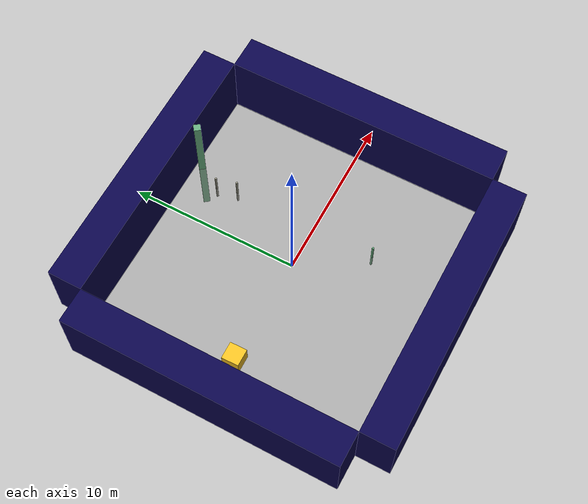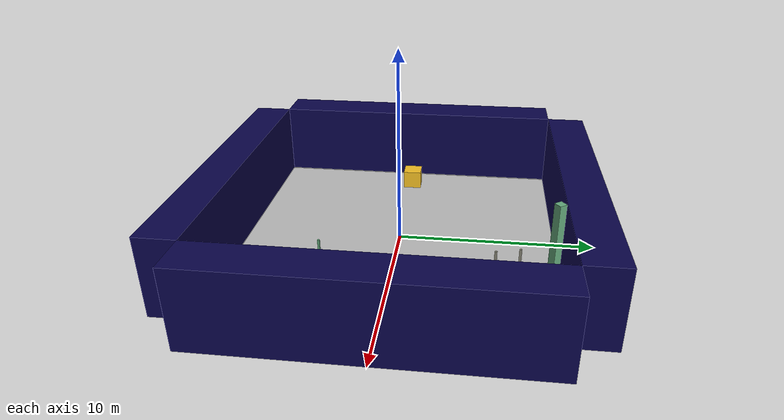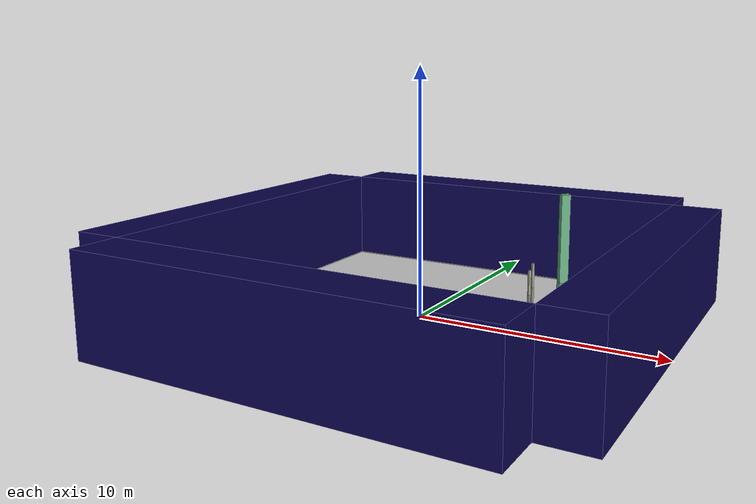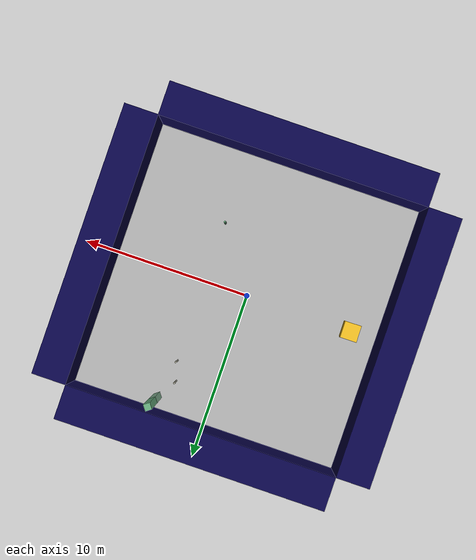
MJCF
<mujoco model="unnamed_model">
  <default>
    <default class="/" />
    <default class="border/" />
    <default class="border_1/" />
    <default class="border_2/" />
    <default class="border_3/" />
    <default class="light/" />
    <default class="agent/" />
    <default class="apple0/" />
    <default class="apple1/" />
    <default class="stone/" />
    <default class="stone_1/" />
  </default>
  <worldbody>
    <body name="border/">
      <body name="border/border" pos="0 9 2">
        <geom name="border/border_geom" class="border/" type="box" size="8.0 1.0 2.0" rgba="0.035 0.016 0.29 1.0" />
      </body>
    </body>
    <body name="border_1/">
      <body name="border_1/border" pos="0 -9 2">
        <geom name="border_1/border_geom" class="border_1/" type="box" size="8.0 1.0 2.0" rgba="0.035 0.016 0.29 1.0" />
      </body>
    </body>
    <body name="border_2/">
      <body name="border_2/border" pos="9 0 2">
        <geom name="border_2/border_geom" class="border_2/" type="box" size="1.0 8.0 2.0" rgba="0.035 0.016 0.29 1.0" />
      </body>
    </body>
    <body name="border_3/">
      <body name="border_3/border" pos="-9 0 2">
        <geom name="border_3/border_geom" class="border_3/" type="box" size="1.0 8.0 2.0" rgba="0.035 0.016 0.29 1.0" />
      </body>
    </body>
    <body name="light/">
      <body name="light/light" pos="0 0 15">
        <geom name="light/light_geom" class="light/" size="0.5" rgba="1.0 1.0 1.0 0.0" />
        <light name="light//unnamed_light_0" class="light/" />
      </body>
    </body>
    <body euler="0 0 270.88273873658773" name="agent/" pos="-6.4000000000000004 0 0.5">
      <joint name="agent/boxagent_freeJoint/" class="/" type="free" />
      <body name="agent/agent" pos="0 0 0" euler="0 0 0">
        <geom name="agent/boxagent_geom" class="agent/" type="box" size="0.5 0.5 0.5" rgba="0.949 0.7451 0.1333 1.0" euler="0 0 0" />
        <camera name="agent/boxagent_camera" class="agent/" fovy="90" pos="0 0 0.25" euler="-90 180 0" />
      </body>
    </body>
    <body name="apple0/">
      <body name="apple0/apple0" pos="2.6235999999999997 -3.6823999999999995 0.10000000000000001" euler="0 0 78.42562943539923">
        <geom name="apple0/apple_geom" class="apple0/" type="box" size="0.05 0.05 1.0" rgba="0.396078431372549 0.6705882352941176 0.48627450980392156 1.0" />
      </body>
    </body>
    <body name="apple1/">
      <body name="apple1/apple1" pos="2.3598499999999998 6.174199999999999 0.10000000000000001" euler="0 0 150.05419266204723">
        <geom name="apple1/apple_geom" class="apple1/" type="box" size="0.05 0.05 1.0" rgba="0.6470588235294118 0.6392156862745098 0.5686274509803921 1.0" />
      </body>
    </body>
    <body name="stone/">
      <body name="stone/stone" pos="3.24505 7.6662999999999997 0.10000000000000001" euler="0 0 36.849665802298944">
        <geom name="stone/stone_geom" class="stone/" type="box" size="0.2 0.2 4.0" rgba="0.396078431372549 0.6705882352941176 0.48627450980392156 1.0" />
      </body>
    </body>
    <body name="stone_1/">
      <body name="stone_1/stone" pos="2.6758999999999999 4.9858000000000011 0.10000000000000001" euler="0 0 149.19755136159512">
        <geom name="stone_1/stone_geom" class="stone_1/" type="box" size="0.05 0.05 1.0" rgba="0.6470588235294118 0.6392156862745098 0.5686274509803921 1.0" />
      </body>
    </body>
    <geom name="base_plane" class="/" type="plane" size="8 8 0.10000000000000001" />
  </worldbody>
</mujoco>
